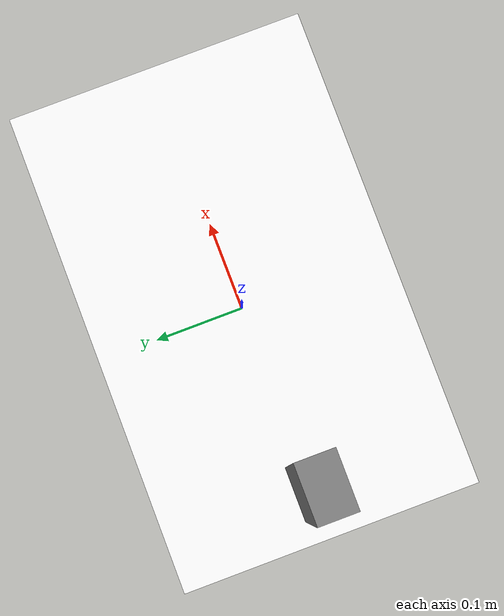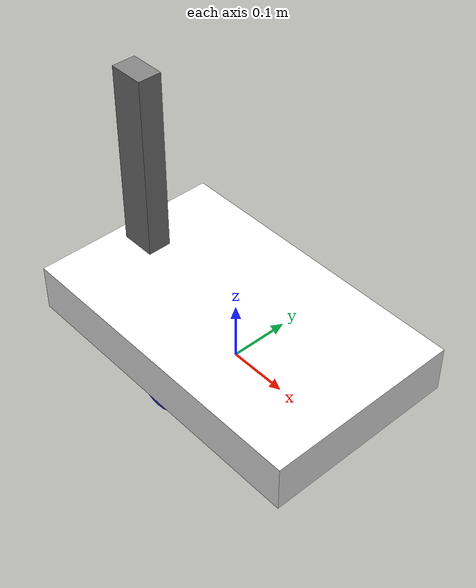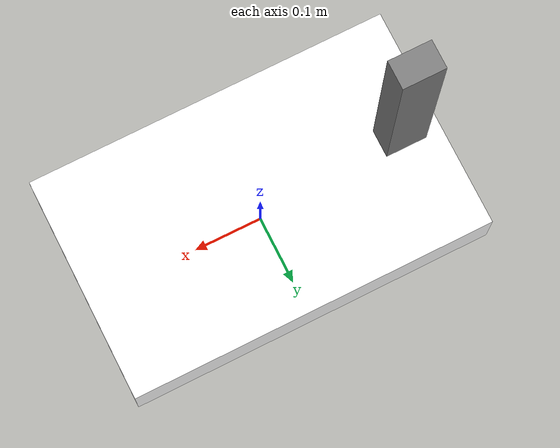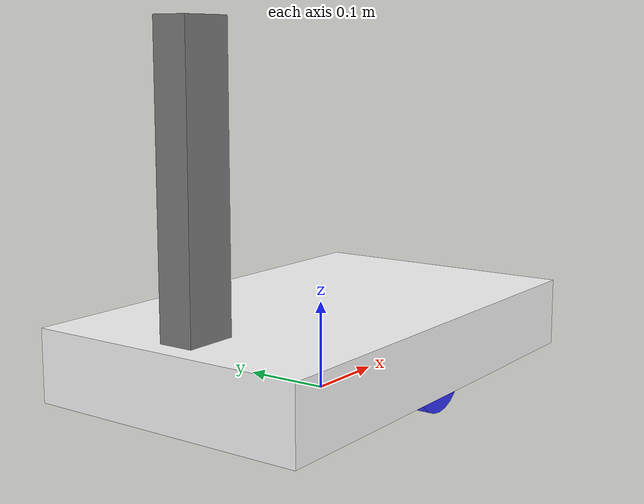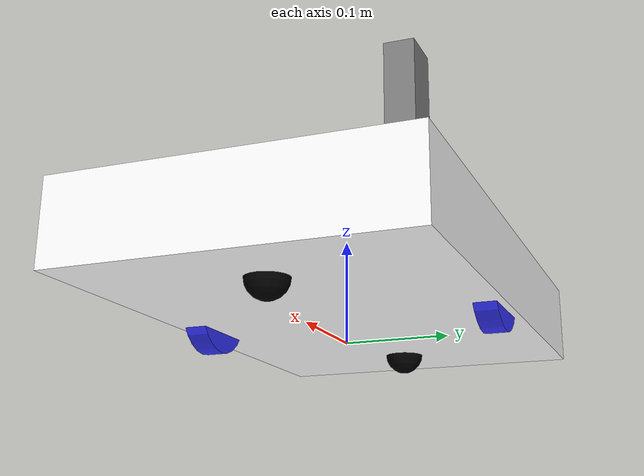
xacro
<?xml version="1.0"?>
<robot xmlns:xacro="http://www.ros.org/wiki/xacro">

    <xacro:include filename="inertial_macros.xacro"/>

    <material name="white">
        <color rgba="1 1 1 1"/>
    </material>

    <material name="orange">
        <color rgba="1 0.3 0.1 1"/>
    </material>

    <material name="blue">
        <color rgba="0.2 0.2 1 1"/>
    </material>

    <material name="black">
        <color rgba="0 0 0 1"/>
    </material>

    <material name="red">
        <color rgba="1 0 0 1"/>
    </material>

    <material name="grey">
        <color rgba="0.5 0.5 0.5 1"/>
    </material>

    <!-- Base link -->

    <link name="base_link"/>

    <!-- Base footprint -->

    <joint name="base_footprint_joint" type="fixed">
        <parent link="base_link"/>
        <child link="base_footprint"/>
        <origin xyz="0 0 0" rpy="0 0 0"/>
    </joint>

    <link name="base_footprint"/>

    <!-- Chassis - srodek podwozia lezy nad osia kol, 0.060 m nad podlozem (spod 0.020, gora 0.100) -->

    <joint name="chassis_joint" type="fixed">
        <parent link="base_link"/>
        <child link="chassis"/>
        <origin xyz="0 0 0.060"/>
    </joint>

    <link name="chassis">
        <visual>
            <geometry>
                <box size="0.530 0.326 0.080"/>
            </geometry>
            <material name="white"/>
        </visual>

        <collision>
            <geometry>
                <box size="0.530 0.326 0.080"/>
            </geometry>
        </collision>

        <!-- 4.85 kg - podwozie z akumulatorem, RPi, elektronika (6 kg calosc minus pozostale elementy) -->
        <xacro:inertial_box mass="4.85" x="0.530" y="0.326" z="0.080">
            <origin xyz="0 0 0" rpy="0 0 0"/>
        </xacro:inertial_box>
    </link>

    <!-- Left wheel -->

    <joint name="left_wheel_joint" type="continuous">
        <parent link="base_link"/>
        <child link="left_wheel"/>
        <origin xyz="0 0.1445 0.045" rpy="-1.5708 0 0"/>
        <axis xyz="0 0 1"/>
    </joint>

    <link name="left_wheel">
        <visual>
            <geometry>
                <cylinder radius="0.045" length="0.022"/>
            </geometry>
            <material name="blue"/>
        </visual>

        <collision>
            <geometry>
                <sphere radius="0.045"/>
            </geometry>
        </collision>

        <xacro:inertial_cylinder mass="0.15" length="0.022" radius="0.045">
            <origin xyz="0 0 0" rpy="0 0 0"/>
        </xacro:inertial_cylinder>
    </link>

    <gazebo reference="left_wheel">
        <mu1>1.0</mu1>
        <mu2>1.0</mu2>
    </gazebo>

    <!-- Right wheel -->

    <joint name="right_wheel_joint" type="continuous">
        <parent link="base_link"/>
        <child link="right_wheel"/>
        <origin xyz="0 -0.1445 0.045" rpy="1.5708 0 0"/>
        <axis xyz="0 0 -1"/>
    </joint>

    <link name="right_wheel">
        <visual>
            <geometry>
                <cylinder radius="0.045" length="0.022"/>
            </geometry>
            <material name="blue"/>
        </visual>

        <collision>
            <geometry>
                <sphere radius="0.045"/>
            </geometry>
        </collision>

        <xacro:inertial_cylinder mass="0.15" length="0.022" radius="0.045">
            <origin xyz="0 0 0" rpy="0 0 0"/>
        </xacro:inertial_cylinder>
    </link>

    <gazebo reference="right_wheel">
        <mu1>1.0</mu1>
        <mu2>1.0</mu2>
    </gazebo>

    <joint name="front_caster_joint" type="fixed">
        <parent link="base_link"/>
        <child link="front_caster"/>
        <origin xyz="0.180 0 0.0205"/>
    </joint>

    <link name="front_caster">
        <visual>
            <geometry>
                <sphere radius="0.020"/>
            </geometry>
            <material name="black"/>
        </visual>

        <collision>
            <geometry>
                <sphere radius="0.020"/>
            </geometry>
        </collision>

        <xacro:inertial_sphere mass="0.05" radius="0.020">
            <origin xyz="0 0 0" rpy="0 0 0"/>
        </xacro:inertial_sphere>
    </link>

    <gazebo reference="front_caster">
        <mu1>0.001</mu1>
        <mu2>0.001</mu2>
    </gazebo>

    <joint name="rear_caster_joint" type="fixed">
        <parent link="base_link"/>
        <child link="rear_caster"/>
        <origin xyz="-0.180 0 0.0205"/>
    </joint>

    <link name="rear_caster">
        <visual>
            <geometry>
                <sphere radius="0.020"/>
            </geometry>
            <material name="black"/>
        </visual>

        <collision>
            <geometry>
                <sphere radius="0.020"/>
            </geometry>
        </collision>

        <xacro:inertial_sphere mass="0.05" radius="0.020">
            <origin xyz="0 0 0" rpy="0 0 0"/>
        </xacro:inertial_sphere>
    </link>

    <gazebo reference="rear_caster">
        <mu1>0.001</mu1>
        <mu2>0.001</mu2>
    </gazebo>

    <!--
    Maszt na tyle robota - 60 mm (x) x 40 mm (y), dlugosc 0.360 m.
    Dol 0.055 m (schowany w podwoziu), gora 0.415 m. Srodek x = -0.210.
    Na szczycie stoi lidar, nizej Kinect.
    -->

    <joint name="mast_joint" type="fixed">
        <parent link="base_link"/>
        <child link="mast"/>
        <origin xyz="-0.210 0 0.235"/>
    </joint>

    <link name="mast">
        <visual>
            <geometry>
                <box size="0.060 0.040 0.360"/>
            </geometry>
            <material name="grey"/>
        </visual>

        <collision>
            <geometry>
                <box size="0.060 0.040 0.360"/>
            </geometry>
        </collision>

        <xacro:inertial_box mass="0.15" x="0.060" y="0.040" z="0.360">
            <origin xyz="0 0 0" rpy="0 0 0"/>
        </xacro:inertial_box>
    </link>

</robot>
